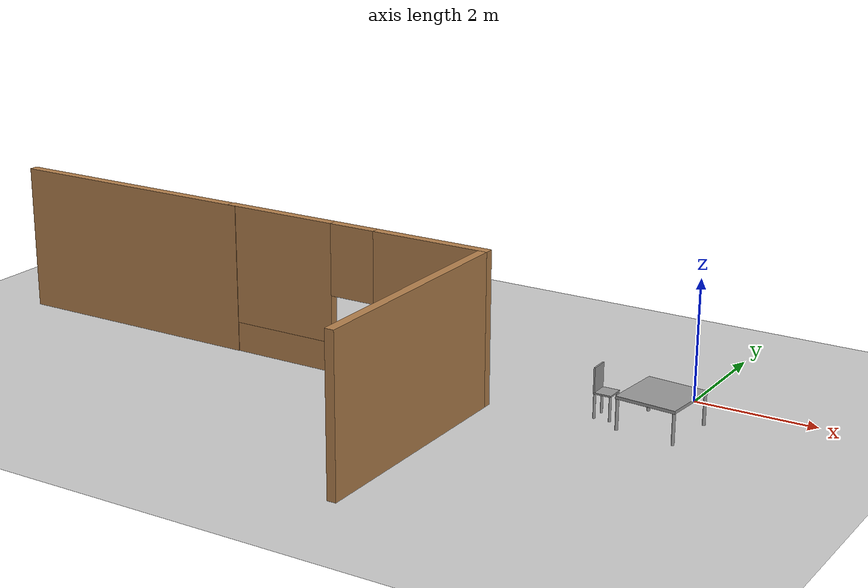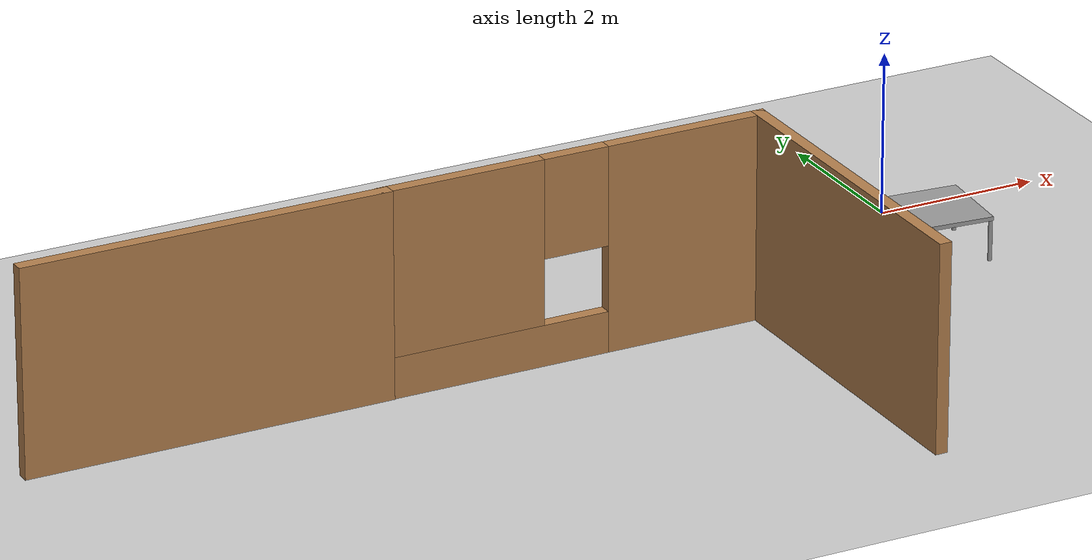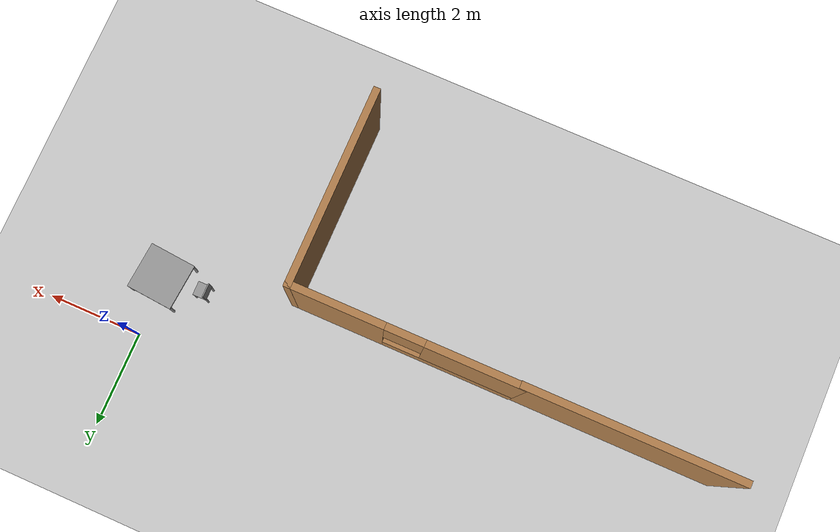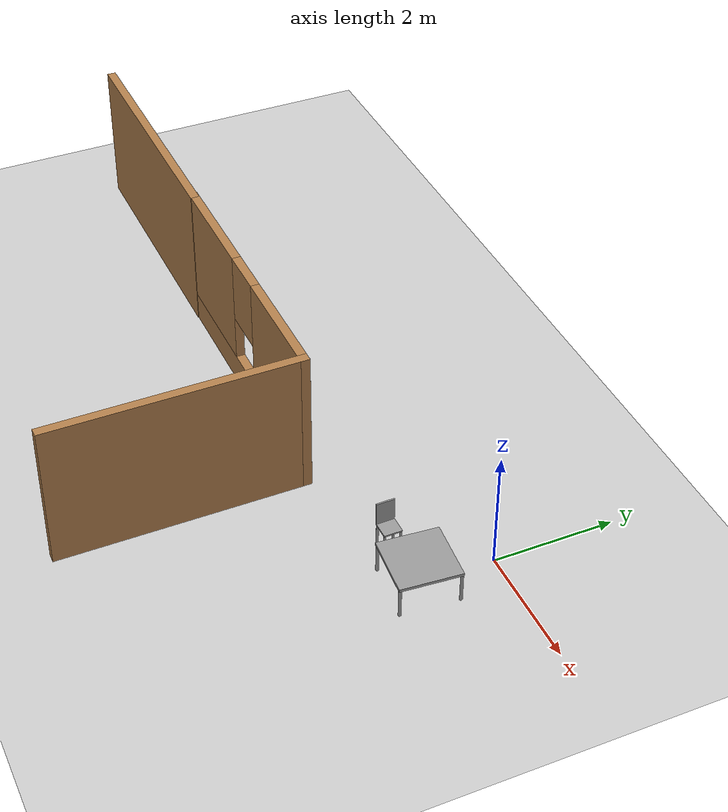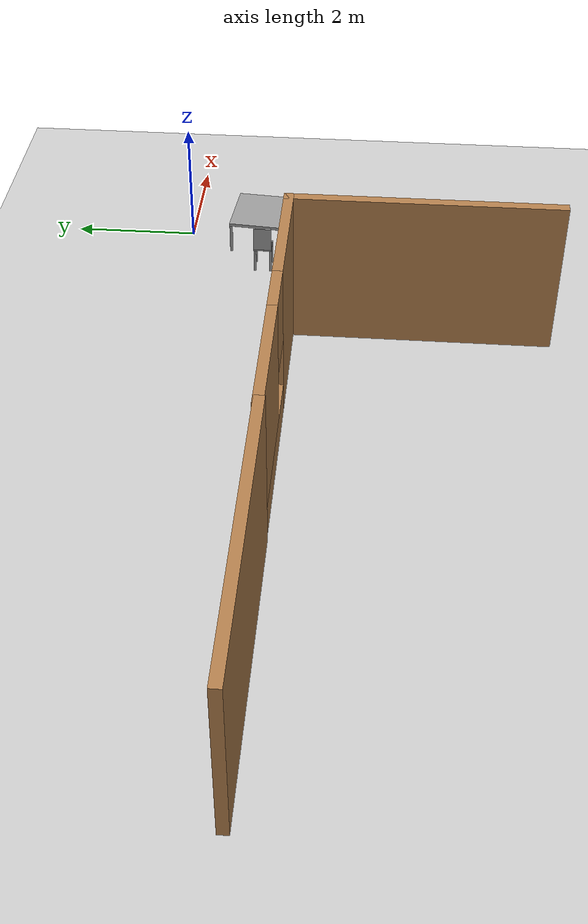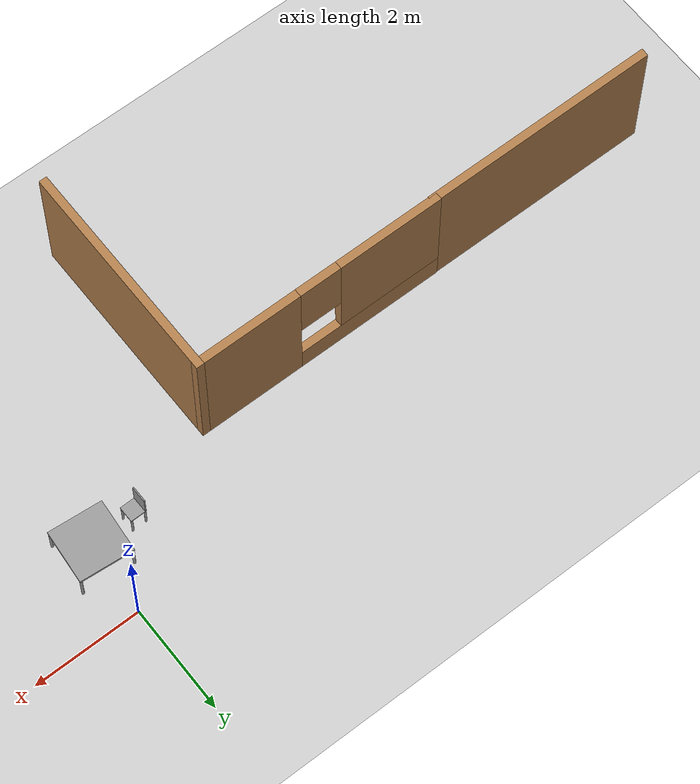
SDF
<sdf version="1.6">
 <world name="default">
  <model name="ground_plane">
   <static>1</static>
   <link name="link">
    <collision name="collision">
     <geometry><plane><normal>0 0 1</normal><size>100 100</size></plane></geometry>
     <surface><friction><ode><mu>100</mu><mu2>50</mu2></ode></friction></surface>
    </collision>
    <visual name="visual">
     <cast_shadows>0</cast_shadows>
     <geometry><plane><normal>0 0 1</normal><size>100 100</size></plane></geometry>
     <material>
      <script><uri>file://media/materials/scripts/gazebo.material</uri><name>Gazebo/Grey</name></script>
     </material>
    </visual>
   </link>
  </model>
  <model name="myTable_0">
   <link name="link_0">
    <pose>7.65666 6.42879 0.72 0 -0 0</pose>
    <inertial>
     <mass>1</mass>
     <inertia>
      <ixx>0.166667</ixx>
      <ixy>0</ixy>
      <ixz>0</ixz>
      <iyy>0.166667</iyy>
      <iyz>0</iyz>
      <izz>0.166667</izz>
     </inertia>
    </inertial>
    <visual name="visual">
     <geometry><box><size>1 1 0.05</size></box></geometry>
     <material>
      <lighting>1</lighting>
      <script><uri>file://media/materials/scripts/gazebo.material</uri><name>Gazebo/Grey</name></script>
      <ambient>0.3 0.3 0.3 1</ambient>
      <diffuse>0.7 0.7 0.7 1</diffuse>
      <specular>0.01 0.01 0.01 1</specular>
      <emissive>0 0 0 1</emissive>
      <shader type="vertex"><normal_map>__default__</normal_map></shader>
     </material>
    </visual>
    <collision name="collision">
     <geometry><box><size>1 1 0.05</size></box></geometry>
     <surface>
      <friction>
       <ode><mu>1</mu><mu2>1</mu2><fdir1>0 0 0</fdir1><slip1>0</slip1><slip2>0</slip2></ode>
       <torsional>
        <coefficient>1</coefficient>
        <patch_radius>0</patch_radius>
        <surface_radius>0</surface_radius>
        <use_patch_radius>1</use_patch_radius>
        <ode><slip>0</slip></ode>
       </torsional>
      </friction>
      <bounce><restitution_coefficient>0</restitution_coefficient><threshold>1e+06</threshold></bounce>
      <contact>
       <collide_without_contact>0</collide_without_contact>
       <collide_without_contact_bitmask>1</collide_without_contact_bitmask>
       <collide_bitmask>1</collide_bitmask>
       <ode>
        <soft_cfm>0</soft_cfm>
        <soft_erp>0.2</soft_erp>
        <kp>1e+13</kp>
        <kd>1</kd>
        <max_vel>0.01</max_vel>
        <min_depth>0</min_depth>
       </ode>
       <bullet>
        <split_impulse>1</split_impulse>
        <split_impulse_penetration_threshold>-0.01</split_impulse_penetration_threshold>
        <soft_cfm>0</soft_cfm>
        <soft_erp>0.2</soft_erp>
        <kp>1e+13</kp>
        <kd>1</kd>
       </bullet>
      </contact>
     </surface>
    </collision>
   </link>
   <link name="link_1">
    <pose>7.18166 5.95379 0.445 0 -0 0</pose>
    <inertial>
     <mass>1</mass>
     <inertia><ixx>0.145833</ixx><ixy>0</ixy><ixz>0</ixz><iyy>0.145833</iyy><iyz>0</iyz><izz>0.125</izz></inertia>
    </inertial>
    <visual name="visual">
     <geometry><cylinder><radius>0.025</radius><length>0.5</length></cylinder></geometry>
     <material>
      <lighting>1</lighting>
      <script><uri>file://media/materials/scripts/gazebo.material</uri><name>Gazebo/Grey</name></script>
      <ambient>0.3 0.3 0.3 1</ambient>
      <diffuse>0.7 0.7 0.7 1</diffuse>
      <specular>0.01 0.01 0.01 1</specular>
      <emissive>0 0 0 1</emissive>
      <shader type="vertex"><normal_map>__default__</normal_map></shader>
     </material>
    </visual>
    <collision name="collision">
     <geometry><cylinder><radius>0.025</radius><length>0.5</length></cylinder></geometry>
     <surface>
      <friction>
       <ode><mu>1</mu><mu2>1</mu2><fdir1>0 0 0</fdir1><slip1>0</slip1><slip2>0</slip2></ode>
       <torsional>
        <coefficient>1</coefficient>
        <patch_radius>0</patch_radius>
        <surface_radius>0</surface_radius>
        <use_patch_radius>1</use_patch_radius>
        <ode><slip>0</slip></ode>
       </torsional>
      </friction>
      <bounce><restitution_coefficient>0</restitution_coefficient><threshold>1e+06</threshold></bounce>
      <contact>
       <collide_without_contact>0</collide_without_contact>
       <collide_without_contact_bitmask>1</collide_without_contact_bitmask>
       <collide_bitmask>1</collide_bitmask>
       <ode>
        <soft_cfm>0</soft_cfm>
        <soft_erp>0.2</soft_erp>
        <kp>1e+13</kp>
        <kd>1</kd>
        <max_vel>0.01</max_vel>
        <min_depth>0</min_depth>
       </ode>
       <bullet>
        <split_impulse>1</split_impulse>
        <split_impulse_penetration_threshold>-0.01</split_impulse_penetration_threshold>
        <soft_cfm>0</soft_cfm>
        <soft_erp>0.2</soft_erp>
        <kp>1e+13</kp>
        <kd>1</kd>
       </bullet>
      </contact>
     </surface>
    </collision>
   </link>
   <link name="link_1_clone">
    <pose>7.18166 6.90379 0.445 0 -0 0</pose>
    <inertial>
     <mass>1</mass>
     <inertia><ixx>0.145833</ixx><ixy>0</ixy><ixz>0</ixz><iyy>0.145833</iyy><iyz>0</iyz><izz>0.125</izz></inertia>
    </inertial>
    <visual name="visual">
     <geometry><cylinder><radius>0.025</radius><length>0.5</length></cylinder></geometry>
     <material>
      <lighting>1</lighting>
      <script><uri>file://media/materials/scripts/gazebo.material</uri><name>Gazebo/Grey</name></script>
      <ambient>0.3 0.3 0.3 1</ambient>
      <diffuse>0.7 0.7 0.7 1</diffuse>
      <specular>0.01 0.01 0.01 1</specular>
      <emissive>0 0 0 1</emissive>
      <shader type="vertex"><normal_map>__default__</normal_map></shader>
     </material>
    </visual>
    <collision name="collision">
     <geometry><cylinder><radius>0.025</radius><length>0.5</length></cylinder></geometry>
     <surface>
      <friction>
       <ode><mu>1</mu><mu2>1</mu2><fdir1>0 0 0</fdir1><slip1>0</slip1><slip2>0</slip2></ode>
       <torsional>
        <coefficient>1</coefficient>
        <patch_radius>0</patch_radius>
        <surface_radius>0</surface_radius>
        <use_patch_radius>1</use_patch_radius>
        <ode><slip>0</slip></ode>
       </torsional>
      </friction>
      <bounce><restitution_coefficient>0</restitution_coefficient><threshold>1e+06</threshold></bounce>
      <contact>
       <collide_without_contact>0</collide_without_contact>
       <collide_without_contact_bitmask>1</collide_without_contact_bitmask>
       <collide_bitmask>1</collide_bitmask>
       <ode>
        <soft_cfm>0</soft_cfm>
        <soft_erp>0.2</soft_erp>
        <kp>1e+13</kp>
        <kd>1</kd>
        <max_vel>0.01</max_vel>
        <min_depth>0</min_depth>
       </ode>
       <bullet>
        <split_impulse>1</split_impulse>
        <split_impulse_penetration_threshold>-0.01</split_impulse_penetration_threshold>
        <soft_cfm>0</soft_cfm>
        <soft_erp>0.2</soft_erp>
        <kp>1e+13</kp>
        <kd>1</kd>
       </bullet>
      </contact>
     </surface>
    </collision>
   </link>
   <link name="link_1_clone_0">
    <pose>8.13166 6.90379 0.445 0 -0 0</pose>
    <inertial>
     <mass>1</mass>
     <inertia><ixx>0.145833</ixx><ixy>0</ixy><ixz>0</ixz><iyy>0.145833</iyy><iyz>0</iyz><izz>0.125</izz></inertia>
    </inertial>
    <visual name="visual">
     <geometry><cylinder><radius>0.025</radius><length>0.5</length></cylinder></geometry>
     <material>
      <lighting>1</lighting>
      <script><uri>file://media/materials/scripts/gazebo.material</uri><name>Gazebo/Grey</name></script>
      <ambient>0.3 0.3 0.3 1</ambient>
      <diffuse>0.7 0.7 0.7 1</diffuse>
      <specular>0.01 0.01 0.01 1</specular>
      <emissive>0 0 0 1</emissive>
      <shader type="vertex"><normal_map>__default__</normal_map></shader>
     </material>
    </visual>
    <collision name="collision">
     <geometry><cylinder><radius>0.025</radius><length>0.5</length></cylinder></geometry>
     <surface>
      <friction>
       <ode><mu>1</mu><mu2>1</mu2><fdir1>0 0 0</fdir1><slip1>0</slip1><slip2>0</slip2></ode>
       <torsional>
        <coefficient>1</coefficient>
        <patch_radius>0</patch_radius>
        <surface_radius>0</surface_radius>
        <use_patch_radius>1</use_patch_radius>
        <ode><slip>0</slip></ode>
       </torsional>
      </friction>
      <bounce><restitution_coefficient>0</restitution_coefficient><threshold>1e+06</threshold></bounce>
      <contact>
       <collide_without_contact>0</collide_without_contact>
       <collide_without_contact_bitmask>1</collide_without_contact_bitmask>
       <collide_bitmask>1</collide_bitmask>
       <ode>
        <soft_cfm>0</soft_cfm>
        <soft_erp>0.2</soft_erp>
        <kp>1e+13</kp>
        <kd>1</kd>
        <max_vel>0.01</max_vel>
        <min_depth>0</min_depth>
       </ode>
       <bullet>
        <split_impulse>1</split_impulse>
        <split_impulse_penetration_threshold>-0.01</split_impulse_penetration_threshold>
        <soft_cfm>0</soft_cfm>
        <soft_erp>0.2</soft_erp>
        <kp>1e+13</kp>
        <kd>1</kd>
       </bullet>
      </contact>
     </surface>
    </collision>
   </link>
   <link name="link_1_clone_1">
    <pose>8.13166 5.95379 0.445 0 -0 0</pose>
    <inertial>
     <mass>1</mass>
     <inertia><ixx>0.145833</ixx><ixy>0</ixy><ixz>0</ixz><iyy>0.145833</iyy><iyz>0</iyz><izz>0.125</izz></inertia>
    </inertial>
    <visual name="visual">
     <geometry><cylinder><radius>0.025</radius><length>0.5</length></cylinder></geometry>
     <material>
      <lighting>1</lighting>
      <script><uri>file://media/materials/scripts/gazebo.material</uri><name>Gazebo/Grey</name></script>
      <ambient>0.3 0.3 0.3 1</ambient>
      <diffuse>0.7 0.7 0.7 1</diffuse>
      <specular>0.01 0.01 0.01 1</specular>
      <emissive>0 0 0 1</emissive>
      <shader type="vertex"><normal_map>__default__</normal_map></shader>
     </material>
    </visual>
    <collision name="collision">
     <geometry><cylinder><radius>0.025</radius><length>0.5</length></cylinder></geometry>
     <surface>
      <friction>
       <ode><mu>1</mu><mu2>1</mu2><fdir1>0 0 0</fdir1><slip1>0</slip1><slip2>0</slip2></ode>
       <torsional>
        <coefficient>1</coefficient>
        <patch_radius>0</patch_radius>
        <surface_radius>0</surface_radius>
        <use_patch_radius>1</use_patch_radius>
        <ode><slip>0</slip></ode>
       </torsional>
      </friction>
      <bounce><restitution_coefficient>0</restitution_coefficient><threshold>1e+06</threshold></bounce>
      <contact>
       <collide_without_contact>0</collide_without_contact>
       <collide_without_contact_bitmask>1</collide_without_contact_bitmask>
       <collide_bitmask>1</collide_bitmask>
       <ode>
        <soft_cfm>0</soft_cfm>
        <soft_erp>0.2</soft_erp>
        <kp>1e+13</kp>
        <kd>1</kd>
        <max_vel>0.01</max_vel>
        <min_depth>0</min_depth>
       </ode>
       <bullet>
        <split_impulse>1</split_impulse>
        <split_impulse_penetration_threshold>-0.01</split_impulse_penetration_threshold>
        <soft_cfm>0</soft_cfm>
        <soft_erp>0.2</soft_erp>
        <kp>1e+13</kp>
        <kd>1</kd>
       </bullet>
      </contact>
     </surface>
    </collision>
   </link>
   <joint name="link_0_JOINT_0" type="fixed">
    <parent>link_0</parent>
    <child>link_1</child>
    <physics>
     <ode><limit><cfm>0</cfm><erp>0.2</erp></limit><suspension><cfm>0</cfm><erp>0.2</erp></suspension></ode>
    </physics>
   </joint>
   <joint name="link_0_JOINT_1" type="fixed">
    <parent>link_0</parent>
    <child>link_1_clone_1</child>
    <physics>
     <ode><limit><cfm>0</cfm><erp>0.2</erp></limit><suspension><cfm>0</cfm><erp>0.2</erp></suspension></ode>
    </physics>
   </joint>
   <joint name="link_0_JOINT_2" type="revolute">
    <parent>link_0</parent>
    <child>link_1_clone</child>
    <axis>
     <xyz>1 0 0</xyz>
     <use_parent_model_frame>0</use_parent_model_frame>
     <limit>
      <lower>-1.79769e+308</lower>
      <upper>1.79769e+308</upper>
      <effort>-1</effort>
      <velocity>-1</velocity>
     </limit>
     <dynamics>
      <spring_reference>0</spring_reference>
      <spring_stiffness>0</spring_stiffness>
      <damping>0</damping>
     </dynamics>
    </axis>
    <physics>
     <ode><limit><cfm>0</cfm><erp>0.2</erp></limit><suspension><cfm>0</cfm><erp>0.2</erp></suspension></ode>
    </physics>
   </joint>
   <joint name="link_0_JOINT_3" type="fixed">
    <parent>link_0</parent>
    <child>link_1_clone_0</child>
    <physics>
     <ode><limit><cfm>0</cfm><erp>0.2</erp></limit><suspension><cfm>0</cfm><erp>0.2</erp></suspension></ode>
    </physics>
   </joint>
   <static>0</static>
   <pose>-8.18958 -6.997 -0.195026 0 -3e-06 -0.084389</pose>
  </model>
  <model name="myChair_clone_clone_0_clone">
   <link name="link_0">
    <pose>0.022917 -0 0.0914 0 -0 0</pose>
    <inertial>
     <mass>1</mass>
     <inertia>
      <ixx>0.166667</ixx>
      <ixy>0</ixy>
      <ixz>0</ixz>
      <iyy>0.166667</iyy>
      <iyz>0</iyz>
      <izz>0.166667</izz>
     </inertia>
    </inertial>
    <visual name="visual">
     <geometry><box><size>0.3 0.3 0.025</size></box></geometry>
     <material>
      <lighting>1</lighting>
      <script><uri>file://media/materials/scripts/gazebo.material</uri><name>Gazebo/Grey</name></script>
      <ambient>0.3 0.3 0.3 1</ambient>
      <diffuse>0.7 0.7 0.7 1</diffuse>
      <specular>0.01 0.01 0.01 1</specular>
      <emissive>0 0 0 1</emissive>
      <shader type="vertex"><normal_map>__default__</normal_map></shader>
     </material>
    </visual>
    <collision name="collision">
     <geometry><box><size>0.3 0.3 0.025</size></box></geometry>
     <surface>
      <friction>
       <ode><mu>1</mu><mu2>1</mu2><fdir1>0 0 0</fdir1><slip1>0</slip1><slip2>0</slip2></ode>
       <torsional>
        <coefficient>1</coefficient>
        <patch_radius>0</patch_radius>
        <surface_radius>0</surface_radius>
        <use_patch_radius>1</use_patch_radius>
        <ode><slip>0</slip></ode>
       </torsional>
      </friction>
      <bounce><restitution_coefficient>0</restitution_coefficient><threshold>1e+06</threshold></bounce>
      <contact>
       <collide_without_contact>0</collide_without_contact>
       <collide_without_contact_bitmask>1</collide_without_contact_bitmask>
       <collide_bitmask>1</collide_bitmask>
       <ode>
        <soft_cfm>0</soft_cfm>
        <soft_erp>0.2</soft_erp>
        <kp>1e+13</kp>
        <kd>1</kd>
        <max_vel>0.01</max_vel>
        <min_depth>0</min_depth>
       </ode>
       <bullet>
        <split_impulse>1</split_impulse>
        <split_impulse_penetration_threshold>-0.01</split_impulse_penetration_threshold>
        <soft_cfm>0</soft_cfm>
        <soft_erp>0.2</soft_erp>
        <kp>1e+13</kp>
        <kd>1</kd>
       </bullet>
      </contact>
     </surface>
    </collision>
   </link>
   <link name="link_1">
    <pose>-0.107083 -0.13 -0.11875 0 -0 0</pose>
    <inertial>
     <mass>1</mass>
     <inertia><ixx>0.145833</ixx><ixy>0</ixy><ixz>0</ixz><iyy>0.145833</iyy><iyz>0</iyz><izz>0.125</izz></inertia>
    </inertial>
    <visual name="visual">
     <geometry><cylinder><radius>0.02</radius><length>0.4</length></cylinder></geometry>
     <material>
      <lighting>1</lighting>
      <script><uri>file://media/materials/scripts/gazebo.material</uri><name>Gazebo/Grey</name></script>
      <ambient>0.3 0.3 0.3 1</ambient>
      <diffuse>0.7 0.7 0.7 1</diffuse>
      <specular>0.01 0.01 0.01 1</specular>
      <emissive>0 0 0 1</emissive>
      <shader type="vertex"><normal_map>__default__</normal_map></shader>
     </material>
    </visual>
    <collision name="collision">
     <geometry><cylinder><radius>0.02</radius><length>0.4</length></cylinder></geometry>
     <surface>
      <friction>
       <ode><mu>1</mu><mu2>1</mu2><fdir1>0 0 0</fdir1><slip1>0</slip1><slip2>0</slip2></ode>
       <torsional>
        <coefficient>1</coefficient>
        <patch_radius>0</patch_radius>
        <surface_radius>0</surface_radius>
        <use_patch_radius>1</use_patch_radius>
        <ode><slip>0</slip></ode>
       </torsional>
      </friction>
      <bounce><restitution_coefficient>0</restitution_coefficient><threshold>1e+06</threshold></bounce>
      <contact>
       <collide_without_contact>0</collide_without_contact>
       <collide_without_contact_bitmask>1</collide_without_contact_bitmask>
       <collide_bitmask>1</collide_bitmask>
       <ode>
        <soft_cfm>0</soft_cfm>
        <soft_erp>0.2</soft_erp>
        <kp>1e+13</kp>
        <kd>1</kd>
        <max_vel>0.01</max_vel>
        <min_depth>0</min_depth>
       </ode>
       <bullet>
        <split_impulse>1</split_impulse>
        <split_impulse_penetration_threshold>-0.01</split_impulse_penetration_threshold>
        <soft_cfm>0</soft_cfm>
        <soft_erp>0.2</soft_erp>
        <kp>1e+13</kp>
        <kd>1</kd>
       </bullet>
      </contact>
     </surface>
    </collision>
   </link>
   <link name="link_1_clone">
    <pose>-0.107083 0.13 -0.11875 0 -0 0</pose>
    <inertial>
     <mass>1</mass>
     <inertia><ixx>0.145833</ixx><ixy>0</ixy><ixz>0</ixz><iyy>0.145833</iyy><iyz>0</iyz><izz>0.125</izz></inertia>
    </inertial>
    <visual name="visual">
     <geometry><cylinder><radius>0.02</radius><length>0.4</length></cylinder></geometry>
     <material>
      <lighting>1</lighting>
      <script><uri>file://media/materials/scripts/gazebo.material</uri><name>Gazebo/Grey</name></script>
      <ambient>0.3 0.3 0.3 1</ambient>
      <diffuse>0.7 0.7 0.7 1</diffuse>
      <specular>0.01 0.01 0.01 1</specular>
      <emissive>0 0 0 1</emissive>
      <shader type="vertex"><normal_map>__default__</normal_map></shader>
     </material>
    </visual>
    <collision name="collision">
     <geometry><cylinder><radius>0.02</radius><length>0.4</length></cylinder></geometry>
     <surface>
      <friction>
       <ode><mu>1</mu><mu2>1</mu2><fdir1>0 0 0</fdir1><slip1>0</slip1><slip2>0</slip2></ode>
       <torsional>
        <coefficient>1</coefficient>
        <patch_radius>0</patch_radius>
        <surface_radius>0</surface_radius>
        <use_patch_radius>1</use_patch_radius>
        <ode><slip>0</slip></ode>
       </torsional>
      </friction>
      <bounce><restitution_coefficient>0</restitution_coefficient><threshold>1e+06</threshold></bounce>
      <contact>
       <collide_without_contact>0</collide_without_contact>
       <collide_without_contact_bitmask>1</collide_without_contact_bitmask>
       <collide_bitmask>1</collide_bitmask>
       <ode>
        <soft_cfm>0</soft_cfm>
        <soft_erp>0.2</soft_erp>
        <kp>1e+13</kp>
        <kd>1</kd>
        <max_vel>0.01</max_vel>
        <min_depth>0</min_depth>
       </ode>
       <bullet>
        <split_impulse>1</split_impulse>
        <split_impulse_penetration_threshold>-0.01</split_impulse_penetration_threshold>
        <soft_cfm>0</soft_cfm>
        <soft_erp>0.2</soft_erp>
        <kp>1e+13</kp>
        <kd>1</kd>
       </bullet>
      </contact>
     </surface>
    </collision>
   </link>
   <link name="link_1_clone_0">
    <pose>0.152917 -0.13 -0.11875 0 -0 0</pose>
    <inertial>
     <mass>1</mass>
     <inertia><ixx>0.145833</ixx><ixy>0</ixy><ixz>0</ixz><iyy>0.145833</iyy><iyz>0</iyz><izz>0.125</izz></inertia>
    </inertial>
    <visual name="visual">
     <geometry><cylinder><radius>0.02</radius><length>0.4</length></cylinder></geometry>
     <material>
      <lighting>1</lighting>
      <script><uri>file://media/materials/scripts/gazebo.material</uri><name>Gazebo/Grey</name></script>
      <ambient>0.3 0.3 0.3 1</ambient>
      <diffuse>0.7 0.7 0.7 1</diffuse>
      <specular>0.01 0.01 0.01 1</specular>
      <emissive>0 0 0 1</emissive>
      <shader type="vertex"><normal_map>__default__</normal_map></shader>
     </material>
    </visual>
    <collision name="collision">
     <geometry><cylinder><radius>0.02</radius><length>0.4</length></cylinder></geometry>
     <surface>
      <friction>
       <ode><mu>1</mu><mu2>1</mu2><fdir1>0 0 0</fdir1><slip1>0</slip1><slip2>0</slip2></ode>
       <torsional>
        <coefficient>1</coefficient>
        <patch_radius>0</patch_radius>
        <surface_radius>0</surface_radius>
        <use_patch_radius>1</use_patch_radius>
        <ode><slip>0</slip></ode>
       </torsional>
      </friction>
      <bounce><restitution_coefficient>0</restitution_coefficient><threshold>1e+06</threshold></bounce>
      <contact>
       <collide_without_contact>0</collide_without_contact>
       <collide_without_contact_bitmask>1</collide_without_contact_bitmask>
       <collide_bitmask>1</collide_bitmask>
       <ode>
        <soft_cfm>0</soft_cfm>
        <soft_erp>0.2</soft_erp>
        <kp>1e+13</kp>
        <kd>1</kd>
        <max_vel>0.01</max_vel>
        <min_depth>0</min_depth>
       </ode>
       <bullet>
        <split_impulse>1</split_impulse>
        <split_impulse_penetration_threshold>-0.01</split_impulse_penetration_threshold>
        <soft_cfm>0</soft_cfm>
        <soft_erp>0.2</soft_erp>
        <kp>1e+13</kp>
        <kd>1</kd>
       </bullet>
      </contact>
     </surface>
    </collision>
   </link>
   <link name="link_1_clone_1">
    <pose>0.152917 0.13 -0.11875 0 -0 0</pose>
    <inertial>
     <mass>1</mass>
     <inertia><ixx>0.145833</ixx><ixy>0</ixy><ixz>0</ixz><iyy>0.145833</iyy><iyz>0</iyz><izz>0.125</izz></inertia>
    </inertial>
    <visual name="visual">
     <geometry><cylinder><radius>0.02</radius><length>0.4</length></cylinder></geometry>
     <material>
      <lighting>1</lighting>
      <script><uri>file://media/materials/scripts/gazebo.material</uri><name>Gazebo/Grey</name></script>
      <ambient>0.3 0.3 0.3 1</ambient>
      <diffuse>0.7 0.7 0.7 1</diffuse>
      <specular>0.01 0.01 0.01 1</specular>
      <emissive>0 0 0 1</emissive>
      <shader type="vertex"><normal_map>__default__</normal_map></shader>
     </material>
    </visual>
    <collision name="collision">
     <geometry><cylinder><radius>0.02</radius><length>0.4</length></cylinder></geometry>
     <surface>
      <friction>
       <ode><mu>1</mu><mu2>1</mu2><fdir1>0 0 0</fdir1><slip1>0</slip1><slip2>0</slip2></ode>
       <torsional>
        <coefficient>1</coefficient>
        <patch_radius>0</patch_radius>
        <surface_radius>0</surface_radius>
        <use_patch_radius>1</use_patch_radius>
        <ode><slip>0</slip></ode>
       </torsional>
      </friction>
      <bounce><restitution_coefficient>0</restitution_coefficient><threshold>1e+06</threshold></bounce>
      <contact>
       <collide_without_contact>0</collide_without_contact>
       <collide_without_contact_bitmask>1</collide_without_contact_bitmask>
       <collide_bitmask>1</collide_bitmask>
       <ode>
        <soft_cfm>0</soft_cfm>
        <soft_erp>0.2</soft_erp>
        <kp>1e+13</kp>
        <kd>1</kd>
        <max_vel>0.01</max_vel>
        <min_depth>0</min_depth>
       </ode>
       <bullet>
        <split_impulse>1</split_impulse>
        <split_impulse_penetration_threshold>-0.01</split_impulse_penetration_threshold>
        <soft_cfm>0</soft_cfm>
        <soft_erp>0.2</soft_erp>
        <kp>1e+13</kp>
        <kd>1</kd>
       </bullet>
      </contact>
     </surface>
    </collision>
   </link>
   <link name="link_2">
    <pose>-0.114583 0 0.303495 0 -0 0</pose>
    <inertial>
     <mass>1</mass>
     <inertia>
      <ixx>0.166667</ixx>
      <ixy>0</ixy>
      <ixz>0</ixz>
      <iyy>0.166667</iyy>
      <iyz>0</iyz>
      <izz>0.166667</izz>
     </inertia>
    </inertial>
    <visual name="visual">
     <geometry><box><size>0.025 0.3 0.4</size></box></geometry>
     <material>
      <lighting>1</lighting>
      <script><uri>file://media/materials/scripts/gazebo.material</uri><name>Gazebo/Grey</name></script>
      <ambient>0.3 0.3 0.3 1</ambient>
      <diffuse>0.7 0.7 0.7 1</diffuse>
      <specular>0.01 0.01 0.01 1</specular>
      <emissive>0 0 0 1</emissive>
      <shader type="vertex"><normal_map>__default__</normal_map></shader>
     </material>
    </visual>
    <collision name="collision">
     <geometry><box><size>0.025 0.3 0.4</size></box></geometry>
     <surface>
      <friction>
       <ode><mu>1</mu><mu2>1</mu2><fdir1>0 0 0</fdir1><slip1>0</slip1><slip2>0</slip2></ode>
       <torsional>
        <coefficient>1</coefficient>
        <patch_radius>0</patch_radius>
        <surface_radius>0</surface_radius>
        <use_patch_radius>1</use_patch_radius>
        <ode><slip>0</slip></ode>
       </torsional>
      </friction>
      <bounce><restitution_coefficient>0</restitution_coefficient><threshold>1e+06</threshold></bounce>
      <contact>
       <collide_without_contact>0</collide_without_contact>
       <collide_without_contact_bitmask>1</collide_without_contact_bitmask>
       <collide_bitmask>1</collide_bitmask>
       <ode>
        <soft_cfm>0</soft_cfm>
        <soft_erp>0.2</soft_erp>
        <kp>1e+13</kp>
        <kd>1</kd>
        <max_vel>0.01</max_vel>
        <min_depth>0</min_depth>
       </ode>
       <bullet>
        <split_impulse>1</split_impulse>
        <split_impulse_penetration_threshold>-0.01</split_impulse_penetration_threshold>
        <soft_cfm>0</soft_cfm>
        <soft_erp>0.2</soft_erp>
        <kp>1e+13</kp>
        <kd>1</kd>
       </bullet>
      </contact>
     </surface>
    </collision>
   </link>
   <joint name="link_0_JOINT_0" type="fixed">
    <parent>link_0</parent>
    <child>link_1</child>
    <physics>
     <ode><limit><cfm>0</cfm><erp>0.2</erp></limit><suspension><cfm>0</cfm><erp>0.2</erp></suspension></ode>
    </physics>
   </joint>
   <joint name="link_0_JOINT_1" type="fixed">
    <parent>link_0</parent>
    <child>link_1_clone</child>
    <physics>
     <ode><limit><cfm>0</cfm><erp>0.2</erp></limit><suspension><cfm>0</cfm><erp>0.2</erp></suspension></ode>
    </physics>
   </joint>
   <joint name="link_0_JOINT_2" type="fixed">
    <parent>link_0</parent>
    <child>link_1_clone_0</child>
    <physics>
     <ode><limit><cfm>0</cfm><erp>0.2</erp></limit><suspension><cfm>0</cfm><erp>0.2</erp></suspension></ode>
    </physics>
   </joint>
   <joint name="link_0_JOINT_3" type="fixed">
    <parent>link_0</parent>
    <child>link_1_clone_1</child>
    <physics>
     <ode><limit><cfm>0</cfm><erp>0.2</erp></limit><suspension><cfm>0</cfm><erp>0.2</erp></suspension></ode>
    </physics>
   </joint>
   <joint name="link_0_JOINT_5" type="revolute">
    <parent>link_0</parent>
    <child>link_2</child>
    <axis>
     <xyz>1 0 0</xyz>
     <use_parent_model_frame>0</use_parent_model_frame>
     <limit>
      <lower>-1.79769e+308</lower>
      <upper>1.79769e+308</upper>
      <effort>-1</effort>
      <velocity>-1</velocity>
     </limit>
     <dynamics>
      <spring_reference>0</spring_reference>
      <spring_stiffness>0</spring_stiffness>
      <damping>0</damping>
      <friction>0</friction>
     </dynamics>
    </axis>
    <physics>
     <ode><limit><cfm>0</cfm><erp>0.2</erp></limit><suspension><cfm>0</cfm><erp>0.2</erp></suspension></ode>
    </physics>
   </joint>
   <static>0</static>
   <pose>-0.911021 -1.31342 0.318742 1e-06 -2e-06 0.008767</pose>
  </model>
  <model name="myHouse">
   <link name="Wall_0">
    <pose>0.060223 -9.98751 0 0 0 -1.5708</pose>
    <visual name="Wall_0_Visual">
     <pose>0 0 1.25 0 -0 0</pose>
     <geometry><box><size>4.184 0.15 2.5</size></box></geometry>
     <material>
      <script><uri>file://media/materials/scripts/gazebo.material</uri><name>Gazebo/Wood</name></script>
      <ambient>1 1 1 1</ambient>
      <diffuse>1 1 1 1</diffuse>
      <specular>0.2 0.2 0.2 1</specular>
      <emissive>0 0 0 1</emissive>
      <shader type="pixel"/>
     </material>
     <meta><layer>0</layer></meta>
    </visual>
    <collision name="Wall_0_Collision">
     <pose>0 0 1.25 0 -0 0</pose>
     <geometry><box><size>4.184 0.15 2.5</size></box></geometry>
     <surface>
      <friction>
       <ode><mu>1</mu><mu2>1</mu2><fdir1>0 0 0</fdir1><slip1>0</slip1><slip2>0</slip2></ode>
       <torsional>
        <coefficient>1</coefficient>
        <patch_radius>0</patch_radius>
        <surface_radius>0</surface_radius>
        <use_patch_radius>1</use_patch_radius>
        <ode><slip>0</slip></ode>
       </torsional>
      </friction>
      <bounce><restitution_coefficient>0</restitution_coefficient><threshold>1e+06</threshold></bounce>
      <contact>
       <collide_without_contact>0</collide_without_contact>
       <collide_without_contact_bitmask>1</collide_without_contact_bitmask>
       <collide_bitmask>1</collide_bitmask>
       <ode>
        <soft_cfm>0</soft_cfm>
        <soft_erp>0.2</soft_erp>
        <kp>1e+13</kp>
        <kd>1</kd>
        <max_vel>0.01</max_vel>
        <min_depth>0</min_depth>
       </ode>
       <bullet>
        <split_impulse>1</split_impulse>
        <split_impulse_penetration_threshold>-0.01</split_impulse_penetration_threshold>
        <soft_cfm>0</soft_cfm>
        <soft_erp>0.2</soft_erp>
        <kp>1e+13</kp>
        <kd>1</kd>
       </bullet>
      </contact>
     </surface>
    </collision>
   </link>
   <link name="Wall_13">
    <pose>-6.79329 -7.98623 0 0 0 -3.14082</pose>
    <visual name="Wall_13_Visual">
     <pose>0 0 1.25 0 -0 0</pose>
     <geometry><box><size>4.46127 0.15 2.5</size></box></geometry>
     <material>
      <script><uri>file://media/materials/scripts/gazebo.material</uri><name>Gazebo/Wood</name></script>
      <ambient>1 1 1 1</ambient>
      <diffuse>1 1 1 1</diffuse>
      <specular>0.2 0.2 0.2 1</specular>
      <emissive>0 0 0 1</emissive>
      <shader type="pixel"/>
     </material>
     <meta><layer>0</layer></meta>
    </visual>
    <collision name="Wall_13_Collision">
     <pose>0 0 1.25 0 -0 0</pose>
     <geometry><box><size>4.46127 0.15 2.5</size></box></geometry>
     <surface>
      <friction>
       <ode><mu>1</mu><mu2>1</mu2><fdir1>0 0 0</fdir1><slip1>0</slip1><slip2>0</slip2></ode>
       <torsional>
        <coefficient>1</coefficient>
        <patch_radius>0</patch_radius>
        <surface_radius>0</surface_radius>
        <use_patch_radius>1</use_patch_radius>
        <ode><slip>0</slip></ode>
       </torsional>
      </friction>
      <bounce><restitution_coefficient>0</restitution_coefficient><threshold>1e+06</threshold></bounce>
      <contact>
       <collide_without_contact>0</collide_without_contact>
       <collide_without_contact_bitmask>1</collide_without_contact_bitmask>
       <collide_bitmask>1</collide_bitmask>
       <ode>
        <soft_cfm>0</soft_cfm>
        <soft_erp>0.2</soft_erp>
        <kp>1e+13</kp>
        <kd>1</kd>
        <max_vel>0.01</max_vel>
        <min_depth>0</min_depth>
       </ode>
       <bullet>
        <split_impulse>1</split_impulse>
        <split_impulse_penetration_threshold>-0.01</split_impulse_penetration_threshold>
        <soft_cfm>0</soft_cfm>
        <soft_erp>0.2</soft_erp>
        <kp>1e+13</kp>
        <kd>1</kd>
       </bullet>
      </contact>
     </surface>
    </collision>
   </link>
   <link name="Wall_7">
    <pose>-2.28871 -7.97269 0 0 0 -3.14079</pose>
    <visual name="Wall_7_Visual_0">
     <pose>-1.40995 0 1.25 0 -0 0</pose>
     <geometry><box><size>2.02832 0.15 2.5</size></box></geometry>
     <material>
      <script><uri>file://media/materials/scripts/gazebo.material</uri><name>Gazebo/Wood</name></script>
      <ambient>1 1 1 1</ambient>
      <diffuse>1 1 1 1</diffuse>
      <specular>0.2 0.2 0.2 1</specular>
      <emissive>0 0 0 1</emissive>
      <shader type="pixel"/>
     </material>
     <meta><layer>0</layer></meta>
    </visual>
    <visual name="Wall_7_Visual_1">
     <pose>1.01416 0 0.25 0 -0 0</pose>
     <geometry><box><size>2.81989 0.15 0.5</size></box></geometry>
     <material>
      <script><uri>file://media/materials/scripts/gazebo.material</uri><name>Gazebo/Wood</name></script>
      <ambient>1 1 1 1</ambient>
      <diffuse>1 1 1 1</diffuse>
      <specular>0.2 0.2 0.2 1</specular>
      <emissive>0 0 0 1</emissive>
      <shader type="pixel"/>
     </material>
     <meta><layer>0</layer></meta>
    </visual>
    <visual name="Wall_7_Visual_2">
     <pose>1.41416 0 1.5 0 -0 0</pose>
     <geometry><box><size>2.01989 0.15 2</size></box></geometry>
     <material>
      <script><uri>file://media/materials/scripts/gazebo.material</uri><name>Gazebo/Wood</name></script>
      <ambient>1 1 1 1</ambient>
      <diffuse>1 1 1 1</diffuse>
      <specular>0.2 0.2 0.2 1</specular>
      <emissive>0 0 0 1</emissive>
      <shader type="pixel"/>
     </material>
     <meta><layer>0</layer></meta>
    </visual>
    <visual name="Wall_7_Visual_3">
     <pose>0.00421 0 1.9 0 -0 0</pose>
     <geometry><box><size>0.8 0.15 1.2</size></box></geometry>
     <material>
      <script><uri>file://media/materials/scripts/gazebo.material</uri><name>Gazebo/Wood</name></script>
      <ambient>1 1 1 1</ambient>
      <diffuse>1 1 1 1</diffuse>
      <specular>0.2 0.2 0.2 1</specular>
      <emissive>0 0 0 1</emissive>
      <shader type="pixel"/>
     </material>
     <meta><layer>0</layer></meta>
    </visual>
    <collision name="Wall_7_Collision_0">
     <pose>-1.40995 0 1.25 0 -0 0</pose>
     <geometry><box><size>2.02832 0.15 2.5</size></box></geometry>
     <surface>
      <friction>
       <ode><mu>1</mu><mu2>1</mu2><fdir1>0 0 0</fdir1><slip1>0</slip1><slip2>0</slip2></ode>
       <torsional>
        <coefficient>1</coefficient>
        <patch_radius>0</patch_radius>
        <surface_radius>0</surface_radius>
        <use_patch_radius>1</use_patch_radius>
        <ode><slip>0</slip></ode>
       </torsional>
      </friction>
      <bounce><restitution_coefficient>0</restitution_coefficient><threshold>1e+06</threshold></bounce>
      <contact>
       <collide_without_contact>0</collide_without_contact>
       <collide_without_contact_bitmask>1</collide_without_contact_bitmask>
       <collide_bitmask>1</collide_bitmask>
       <ode>
        <soft_cfm>0</soft_cfm>
        <soft_erp>0.2</soft_erp>
        <kp>1e+13</kp>
        <kd>1</kd>
        <max_vel>0.01</max_vel>
        <min_depth>0</min_depth>
       </ode>
       <bullet>
        <split_impulse>1</split_impulse>
        <split_impulse_penetration_threshold>-0.01</split_impulse_penetration_threshold>
        <soft_cfm>0</soft_cfm>
        <soft_erp>0.2</soft_erp>
        <kp>1e+13</kp>
        <kd>1</kd>
       </bullet>
      </contact>
     </surface>
    </collision>
    <collision name="Wall_7_Collision_1">
     <pose>1.01416 0 0.25 0 -0 0</pose>
     <geometry><box><size>2.81989 0.15 0.5</size></box></geometry>
     <surface>
      <friction>
       <ode><mu>1</mu><mu2>1</mu2><fdir1>0 0 0</fdir1><slip1>0</slip1><slip2>0</slip2></ode>
       <torsional>
        <coefficient>1</coefficient>
        <patch_radius>0</patch_radius>
        <surface_radius>0</surface_radius>
        <use_patch_radius>1</use_patch_radius>
        <ode><slip>0</slip></ode>
       </torsional>
      </friction>
      <bounce><restitution_coefficient>0</restitution_coefficient><threshold>1e+06</threshold></bounce>
      <contact>
       <collide_without_contact>0</collide_without_contact>
       <collide_without_contact_bitmask>1</collide_without_contact_bitmask>
       <collide_bitmask>1</collide_bitmask>
       <ode>
        <soft_cfm>0</soft_cfm>
        <soft_erp>0.2</soft_erp>
        <kp>1e+13</kp>
        <kd>1</kd>
        <max_vel>0.01</max_vel>
        <min_depth>0</min_depth>
       </ode>
       <bullet>
        <split_impulse>1</split_impulse>
        <split_impulse_penetration_threshold>-0.01</split_impulse_penetration_threshold>
        <soft_cfm>0</soft_cfm>
        <soft_erp>0.2</soft_erp>
        <kp>1e+13</kp>
        <kd>1</kd>
       </bullet>
      </contact>
     </surface>
    </collision>
    <collision name="Wall_7_Collision_2">
     <pose>1.41416 0 1.5 0 -0 0</pose>
     <geometry><box><size>2.01989 0.15 2</size></box></geometry>
     <surface>
      <friction>
       <ode><mu>1</mu><mu2>1</mu2><fdir1>0 0 0</fdir1><slip1>0</slip1><slip2>0</slip2></ode>
       <torsional>
        <coefficient>1</coefficient>
        <patch_radius>0</patch_radius>
        <surface_radius>0</surface_radius>
        <use_patch_radius>1</use_patch_radius>
        <ode><slip>0</slip></ode>
       </torsional>
      </friction>
      <bounce><restitution_coefficient>0</restitution_coefficient><threshold>1e+06</threshold></bounce>
      <contact>
       <collide_without_contact>0</collide_without_contact>
       <collide_without_contact_bitmask>1</collide_without_contact_bitmask>
       <collide_bitmask>1</collide_bitmask>
       <ode>
        <soft_cfm>0</soft_cfm>
        <soft_erp>0.2</soft_erp>
        <kp>1e+13</kp>
        <kd>1</kd>
        <max_vel>0.01</max_vel>
        <min_depth>0</min_depth>
       </ode>
       <bullet>
        <split_impulse>1</split_impulse>
        <split_impulse_penetration_threshold>-0.01</split_impulse_penetration_threshold>
        <soft_cfm>0</soft_cfm>
        <soft_erp>0.2</soft_erp>
        <kp>1e+13</kp>
        <kd>1</kd>
       </bullet>
      </contact>
     </surface>
    </collision>
    <collision name="Wall_7_Collision_3">
     <pose>0.00421 0 1.9 0 -0 0</pose>
     <geometry><box><size>0.8 0.15 1.2</size></box></geometry>
     <surface>
      <friction>
       <ode><mu>1</mu><mu2>1</mu2><fdir1>0 0 0</fdir1><slip1>0</slip1><slip2>0</slip2></ode>
       <torsional>
        <coefficient>1</coefficient>
        <patch_radius>0</patch_radius>
        <surface_radius>0</surface_radius>
        <use_patch_radius>1</use_patch_radius>
        <ode><slip>0</slip></ode>
       </torsional>
      </friction>
      <bounce><restitution_coefficient>0</restitution_coefficient><threshold>1e+06</threshold></bounce>
      <contact>
       <collide_without_contact>0</collide_without_contact>
       <collide_without_contact_bitmask>1</collide_without_contact_bitmask>
       <collide_bitmask>1</collide_bitmask>
       <ode>
        <soft_cfm>0</soft_cfm>
        <soft_erp>0.2</soft_erp>
        <kp>1e+13</kp>
        <kd>1</kd>
        <max_vel>0.01</max_vel>
        <min_depth>0</min_depth>
       </ode>
       <bullet>
        <split_impulse>1</split_impulse>
        <split_impulse_penetration_threshold>-0.01</split_impulse_penetration_threshold>
        <soft_cfm>0</soft_cfm>
        <soft_erp>0.2</soft_erp>
        <kp>1e+13</kp>
        <kd>1</kd>
       </bullet>
      </contact>
     </surface>
    </collision>
   </link>
   <static>1</static>
   <pose>-2.763 6.07954 0 0 -0 0</pose>
  </model>
 </world>
</sdf>
